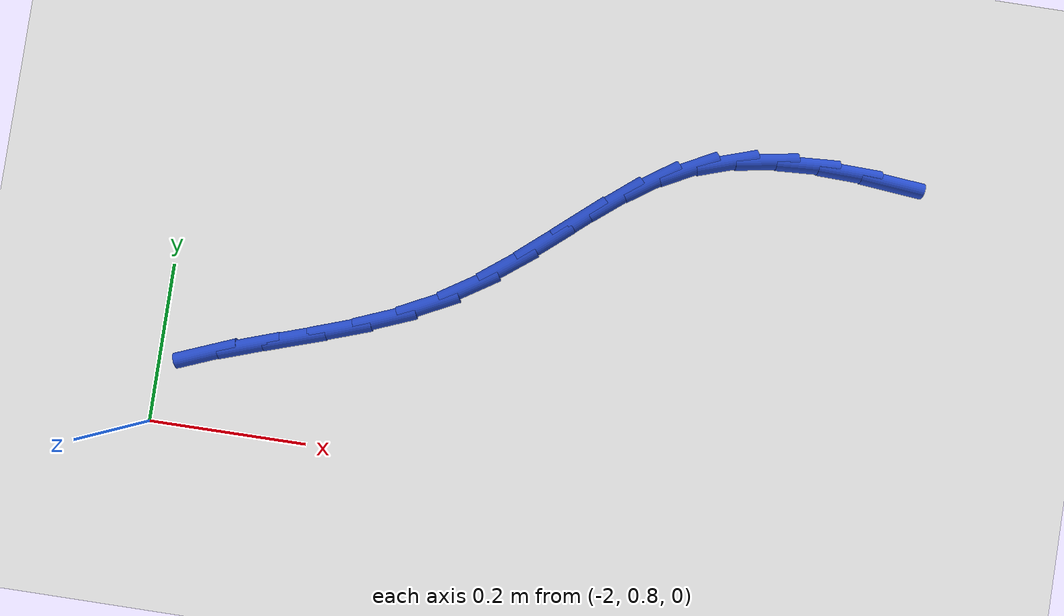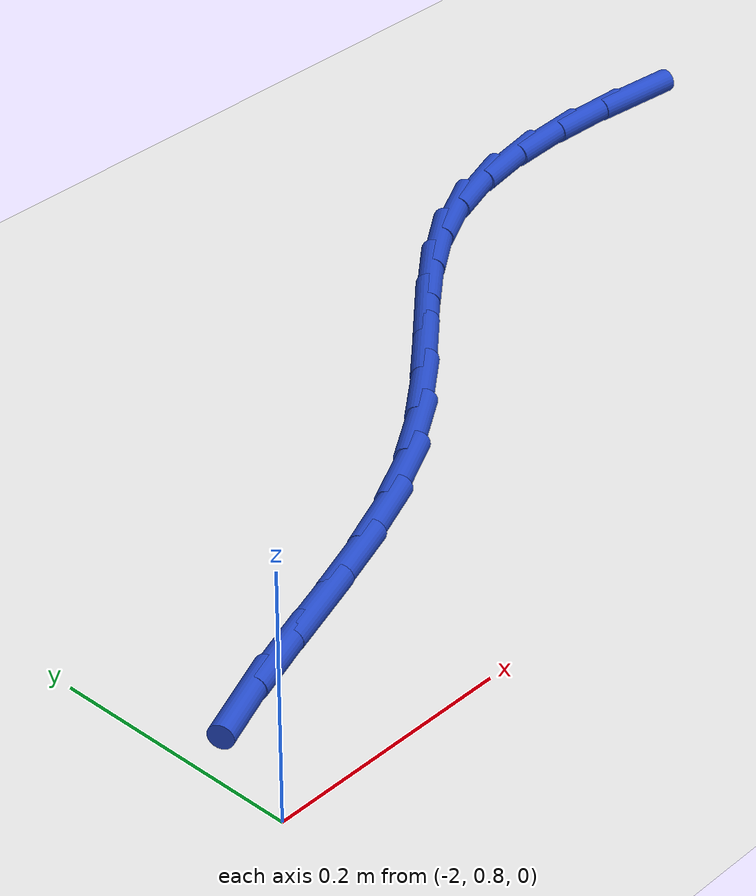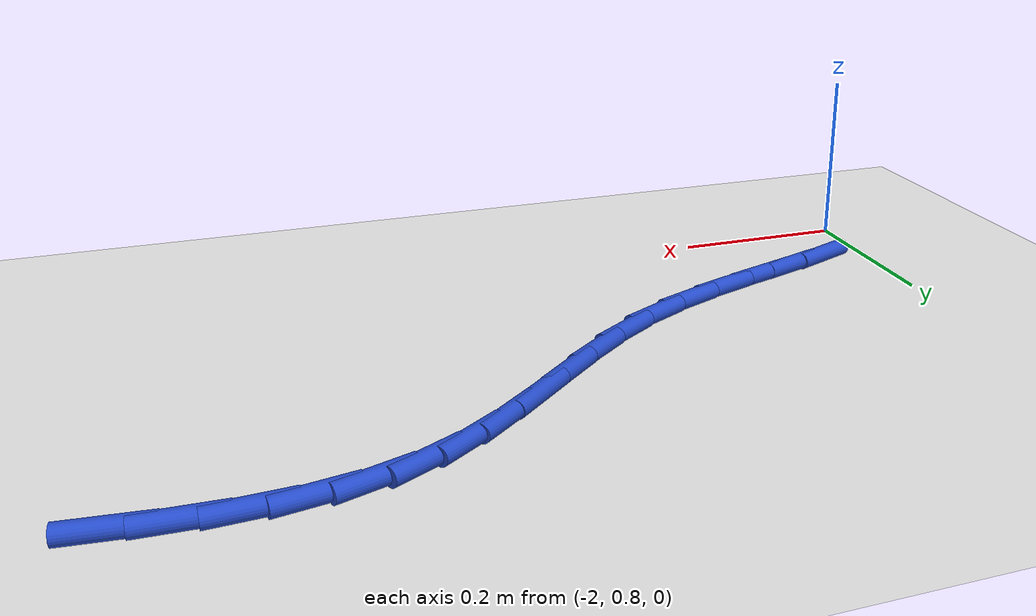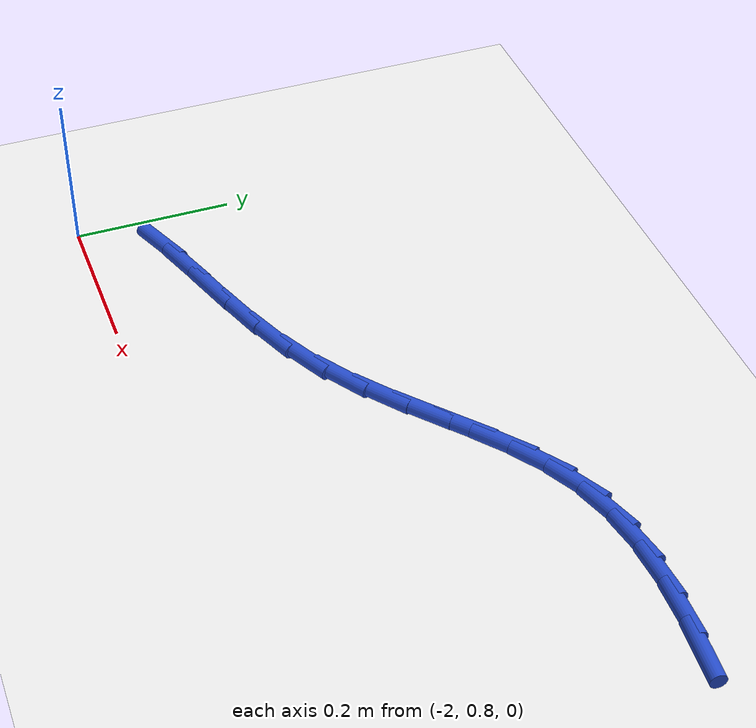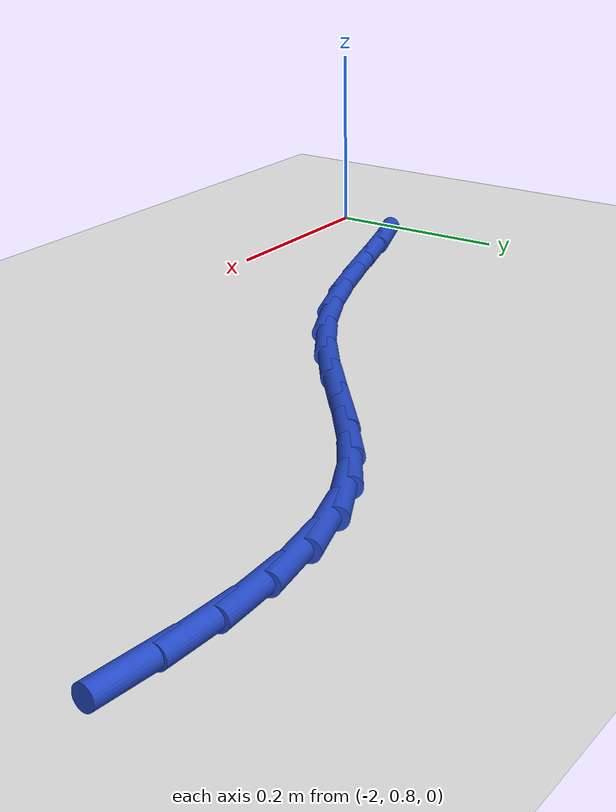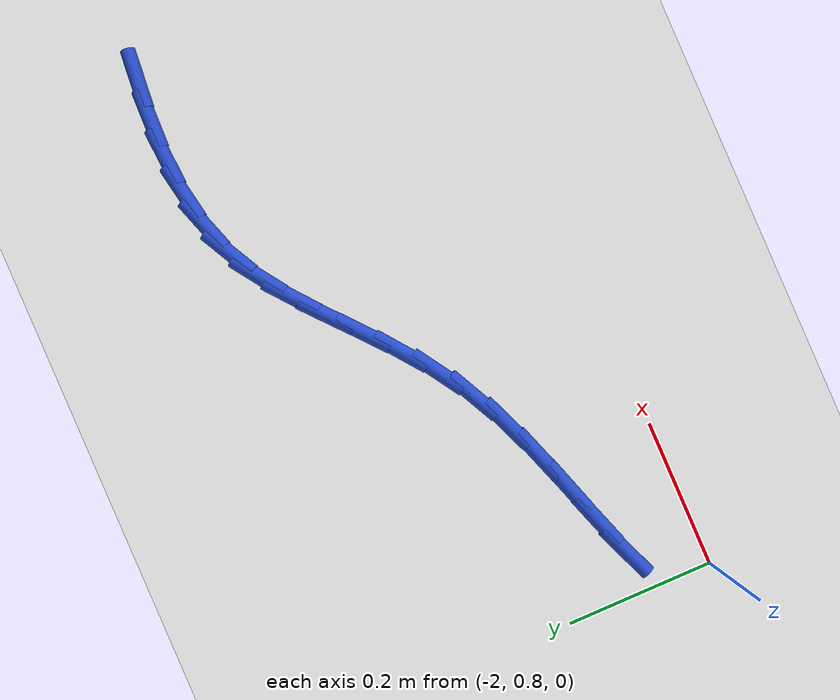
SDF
<sdf version="1.6">
 <world name="default">
  <model name="ground_plane">
   <static>1</static>
   <link name="link">
    <collision name="collision">
     <geometry><plane><normal>0 0 1</normal><size>100 100</size></plane></geometry>
     <surface><friction><ode><mu>100</mu><mu2>50</mu2></ode></friction></surface>
    </collision>
    <visual name="visual">
     <cast_shadows>0</cast_shadows>
     <geometry><plane><normal>0 0 1</normal><size>100 100</size></plane></geometry>
     <material>
      <script><uri>file://media/materials/scripts/gazebo.material</uri><name>Gazebo/WhiteGlow</name></script>
     </material>
    </visual>
   </link>
  </model>
  <model name="line">
   <link name="link_35">
    <pose>-1.1205006407759976 1.2364420916246748 0.01 0 1.57 -0.09382537029875745</pose>
    <collision name="collision">
     <geometry><cylinder><radius>0.01</radius><length>0.08</length></cylinder></geometry>
    </collision>
    <visual name="visual">
     <material>
      <script><name>Gazebo/Blue</name><uri>file://media/materials/scripts/gazebo.material</uri></script>
     </material>
     <geometry><cylinder><radius>0.01</radius><length>0.08</length></cylinder></geometry>
    </visual>
   </link>
   <link name="link_36">
    <pose>-1.175264031399838 1.2415954178315856 0.01 0 1.57 -0.029602178520806936</pose>
    <collision name="collision">
     <geometry><cylinder><radius>0.01</radius><length>0.08</length></cylinder></geometry>
    </collision>
    <visual name="visual">
     <material>
      <script><name>Gazebo/Blue</name><uri>file://media/materials/scripts/gazebo.material</uri></script>
     </material>
     <geometry><cylinder><radius>0.01</radius><length>0.08</length></cylinder></geometry>
    </visual>
   </link>
   <link name="link_37">
    <pose>-1.2285993497949421 1.2431747207837205 0.01 0 1.57 0.05912865321763659</pose>
    <collision name="collision">
     <geometry><cylinder><radius>0.01</radius><length>0.08</length></cylinder></geometry>
    </collision>
    <visual name="visual">
     <material>
      <script><name>Gazebo/Blue</name><uri>file://media/materials/scripts/gazebo.material</uri></script>
     </material>
     <geometry><cylinder><radius>0.01</radius><length>0.08</length></cylinder></geometry>
    </visual>
   </link>
   <link name="link_38">
    <pose>-1.2800680927925936 1.240127891727399 0.01 0 1.57 0.17564114858324076</pose>
    <collision name="collision">
     <geometry><cylinder><radius>0.01</radius><length>0.08</length></cylinder></geometry>
    </collision>
    <visual name="visual">
     <material>
      <script><name>Gazebo/Blue</name><uri>file://media/materials/scripts/gazebo.material</uri></script>
     </material>
     <geometry><cylinder><radius>0.01</radius><length>0.08</length></cylinder></geometry>
    </visual>
   </link>
   <link name="link_39">
    <pose>-1.3292317572240782 1.2314028219089421 0.01 0 1.57 0.32140266014322155</pose>
    <collision name="collision">
     <geometry><cylinder><radius>0.01</radius><length>0.08</length></cylinder></geometry>
    </collision>
    <visual name="visual">
     <material>
      <script><name>Gazebo/Blue</name><uri>file://media/materials/scripts/gazebo.material</uri></script>
     </material>
     <geometry><cylinder><radius>0.01</radius><length>0.08</length></cylinder></geometry>
    </visual>
   </link>
   <link name="link_40">
    <pose>-1.3756518399206792 1.2159474025746693 0.01 0 1.57 0.4820200077810443</pose>
    <collision name="collision">
     <geometry><cylinder><radius>0.01</radius><length>0.08</length></cylinder></geometry>
    </collision>
    <visual name="visual">
     <material>
      <script><name>Gazebo/Blue</name><uri>file://media/materials/scripts/gazebo.material</uri></script>
     </material>
     <geometry><cylinder><radius>0.01</radius><length>0.08</length></cylinder></geometry>
    </visual>
   </link>
   <link name="link_41">
    <pose>-1.419141732449636 1.1931943148273474 0.01 0 1.57 0.6059103531486181</pose>
    <collision name="collision">
     <geometry><cylinder><radius>0.01</radius><length>0.08</length></cylinder></geometry>
    </collision>
    <visual name="visual">
     <material>
      <script><name>Gazebo/Blue</name><uri>file://media/materials/scripts/gazebo.material</uri></script>
     </material>
     <geometry><cylinder><radius>0.01</radius><length>0.08</length></cylinder></geometry>
    </visual>
   </link>
   <link name="link_42">
    <pose>-1.4605256017860118 1.1645215510244746 0.01 0 1.57 0.68138634217632</pose>
    <collision name="collision">
     <geometry><cylinder><radius>0.01</radius><length>0.08</length></cylinder></geometry>
    </collision>
    <visual name="visual">
     <material>
      <script><name>Gazebo/Blue</name><uri>file://media/materials/scripts/gazebo.material</uri></script>
     </material>
     <geometry><cylinder><radius>0.01</radius><length>0.08</length></cylinder></geometry>
    </visual>
   </link>
   <link name="link_43">
    <pose>-1.5008811104063229 1.1317949741703635 0.01 0 1.57 0.712633446557139</pose>
    <collision name="collision">
     <geometry><cylinder><radius>0.01</radius><length>0.08</length></cylinder></geometry>
    </collision>
    <visual name="visual">
     <material>
      <script><name>Gazebo/Blue</name><uri>file://media/materials/scripts/gazebo.material</uri></script>
     </material>
     <geometry><cylinder><radius>0.01</radius><length>0.08</length></cylinder></geometry>
    </visual>
   </link>
   <link name="link_44">
    <pose>-1.5412859207873824 1.096880447269897 0.01 0 1.57 0.7035792374951607</pose>
    <collision name="collision">
     <geometry><cylinder><radius>0.01</radius><length>0.08</length></cylinder></geometry>
    </collision>
    <visual name="visual">
     <material>
      <script><name>Gazebo/Blue</name><uri>file://media/materials/scripts/gazebo.material</uri></script>
     </material>
     <geometry><cylinder><radius>0.01</radius><length>0.08</length></cylinder></geometry>
    </visual>
   </link>
   <link name="link_45">
    <pose>-1.5828176954060023 1.0616438333279603 0.01 0 1.57 0.6564055976925861</pose>
    <collision name="collision">
     <geometry><cylinder><radius>0.01</radius><length>0.08</length></cylinder></geometry>
    </collision>
    <visual name="visual">
     <material>
      <script><name>Gazebo/Blue</name><uri>file://media/materials/scripts/gazebo.material</uri></script>
     </material>
     <geometry><cylinder><radius>0.01</radius><length>0.08</length></cylinder></geometry>
    </visual>
   </link>
   <link name="link_46">
    <pose>-1.6265540967389978 1.027950995349437 0.01 0 1.57 0.5721933192027261</pose>
    <collision name="collision">
     <geometry><cylinder><radius>0.01</radius><length>0.08</length></cylinder></geometry>
    </collision>
    <visual name="visual">
     <material>
      <script><name>Gazebo/Blue</name><uri>file://media/materials/scripts/gazebo.material</uri></script>
     </material>
     <geometry><cylinder><radius>0.01</radius><length>0.08</length></cylinder></geometry>
    </visual>
   </link>
   <link name="link_47">
    <pose>-1.6735727851841504 0.9976677938901284 0.01 0 1.57 0.4654530139055281</pose>
    <collision name="collision">
     <geometry><cylinder><radius>0.01</radius><length>0.08</length></cylinder></geometry>
    </collision>
    <visual name="visual">
     <material>
      <script><name>Gazebo/Blue</name><uri>file://media/materials/scripts/gazebo.material</uri></script>
     </material>
     <geometry><cylinder><radius>0.01</radius><length>0.08</length></cylinder></geometry>
    </visual>
   </link>
   <link name="link_48">
    <pose>-1.7244766903981563 0.9721008596638301 0.01 0 1.57 0.38432777166515913</pose>
    <collision name="collision">
     <geometry><cylinder><radius>0.01</radius><length>0.08</length></cylinder></geometry>
    </collision>
    <visual name="visual">
     <material>
      <script><name>Gazebo/Blue</name><uri>file://media/materials/scripts/gazebo.material</uri></script>
     </material>
     <geometry><cylinder><radius>0.01</radius><length>0.08</length></cylinder></geometry>
    </visual>
   </link>
   <link name="link_49">
    <pose>-1.7780622177306658 0.9504287490563782 0.01 0 1.57 0.3363972813546253</pose>
    <collision name="collision">
     <geometry><cylinder><radius>0.01</radius><length>0.08</length></cylinder></geometry>
    </collision>
    <visual name="visual">
     <material>
      <script><name>Gazebo/Blue</name><uri>file://media/materials/scripts/gazebo.material</uri></script>
     </material>
     <geometry><cylinder><radius>0.01</radius><length>0.08</length></cylinder></geometry>
    </visual>
   </link>
   <link name="link_50">
    <pose>-1.83269612759337 0.9313238994055295 0.01 0 1.57 0.31923073908143607</pose>
    <collision name="collision">
     <geometry><cylinder><radius>0.01</radius><length>0.08</length></cylinder></geometry>
    </collision>
    <visual name="visual">
     <material>
      <script><name>Gazebo/Blue</name><uri>file://media/materials/scripts/gazebo.material</uri></script>
     </material>
     <geometry><cylinder><radius>0.01</radius><length>0.08</length></cylinder></geometry>
    </visual>
   </link>
   <link name="link_51">
    <pose>-1.8867451803979576 0.913458748049041 0.01 0 1.57 0.3334429540282329</pose>
    <collision name="collision">
     <geometry><cylinder><radius>0.01</radius><length>0.08</length></cylinder></geometry>
    </collision>
    <visual name="visual">
     <material>
      <script><name>Gazebo/Blue</name><uri>file://media/materials/scripts/gazebo.material</uri></script>
     </material>
     <geometry><cylinder><radius>0.01</radius><length>0.08</length></cylinder></geometry>
    </visual>
   </link>
   <link name="link_52">
    <pose>-1.938576136556121 0.8955057323246696 0.01 0 1.57 0.3836752934981178</pose>
    <collision name="collision">
     <geometry><cylinder><radius>0.01</radius><length>0.08</length></cylinder></geometry>
    </collision>
    <visual name="visual">
     <material>
      <script><name>Gazebo/Blue</name><uri>file://media/materials/scripts/gazebo.material</uri></script>
     </material>
     <geometry><cylinder><radius>0.01</radius><length>0.08</length></cylinder></geometry>
    </visual>
   </link>
  </model>
 </world>
</sdf>
